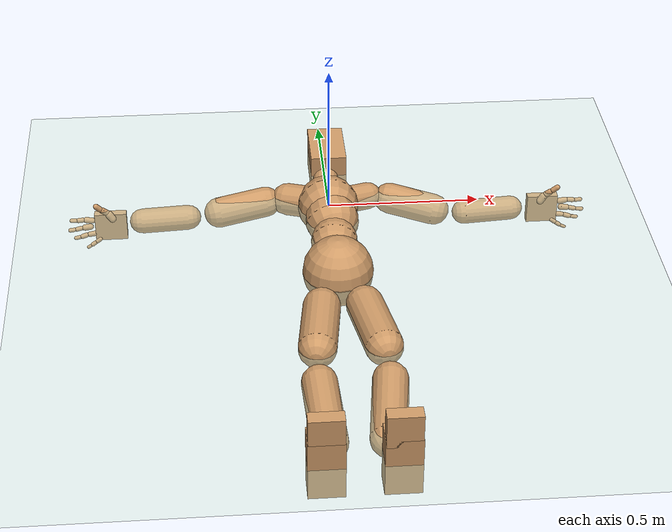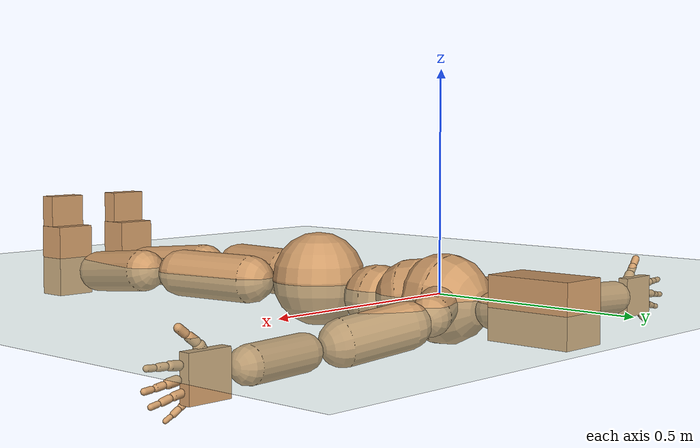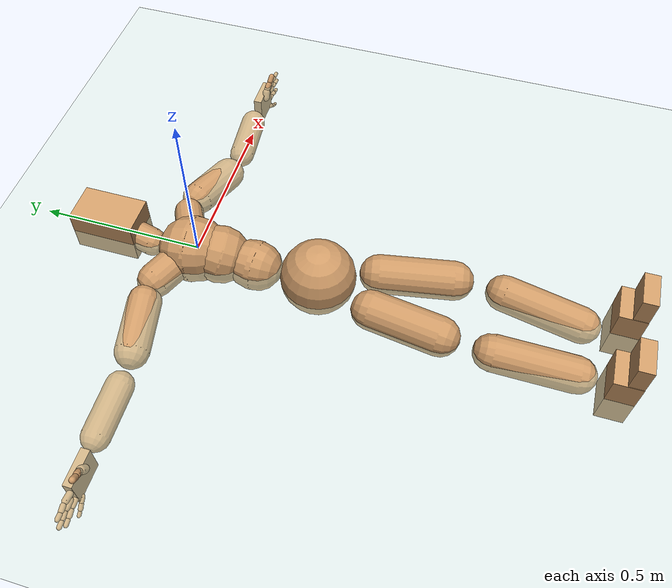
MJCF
<mujoco model="humanoid">
  <default>
    <joint damping="0.0" armature="0.01" stiffness="0.0" limited="true"/>
    <geom conaffinity="1" condim="3" contype="7" margin="0.001" rgba="0.8 0.6 .4 1" friction="1.0 0.1 0.1" />
  </default>
  <asset>
    <texture type="skybox" builtin="gradient" rgb1=".4 .5 .6" rgb2="0 0 0" width="100" height="100"/>
    <texture builtin="flat" height="1278" mark="cross" markrgb="1 1 1" name="texgeom" random="0.01" rgb1="0.8 0.6 0.4" rgb2="0.8 0.6 0.4" type="cube" width="127"/>
    <texture builtin="checker" height="100" name="texplane" rgb1="0 0 0" rgb2="0.8 0.8 0.8" type="2d" width="100"/>
    <material name="MatPlane" reflectance="0.5" shininess="1" specular="1" texrepeat="60 60" texture="texplane"/>
    <material name="geom" texture="texgeom" texuniform="true"/>
  </asset>
  <worldbody>
    <light cutoff="100" diffuse="1 1 1" dir="-0 0 -1.3" directional="true" exponent="1" pos="0 0 1.3" specular=".1 .1 .1"/>
    <geom conaffinity="1" condim="3" name="floor" pos="0 0 0" rgba="0.8 0.9 0.8 1" size="100 100 .2" type="plane" material="MatPlane"/>
    <body name="Pelvis" pos="0.0013 -0.38 0.0136">
      <freejoint name="Pelvis"/>
      <geom type="sphere" density="2637.470381" pos="-0.0013 0 -0.0115" size="0.1129"/>
      <body name="L_Hip" pos="0.0549 -0.0969 -0.0231">
        <joint name="L_Hip_x" type="hinge" pos="0 0 0" axis="1 0 0" stiffness="300" damping="30" armature="0.02" range="-110 30"/>
        <joint name="L_Hip_y" type="hinge" pos="0 0 0" axis="0 1 0" stiffness="300" damping="30" armature="0.02" range="-30 30"/>
        <joint name="L_Hip_z" type="hinge" pos="0 0 0" axis="0 0 1" stiffness="300" damping="30" armature="0.02" range="-30 30"/>
        <geom type="capsule" contype="1" conaffinity="1" density="1200" fromto="0.0127 -0.0722 0.0007 0.0506 -0.2888 0.0028" size="0.0591"/>
        <body name="L_Knee" pos="0.0633 -0.361 0.0035">
          <joint name="L_Knee_x" type="hinge" pos="0 0 0" axis="1 0 0" stiffness="300" damping="30" armature="0.02" range="-10 150"/>
          <joint name="L_Knee_y" type="hinge" pos="0 0 0" axis="0 1 0" stiffness="300" damping="30" armature="0.02" range="-45 60"/>
          <joint name="L_Knee_z" type="hinge" pos="0 0 0" axis="0 0 1" stiffness="300" damping="30" armature="0.02" range="-70 40"/>
          <geom type="capsule" contype="1" conaffinity="1" density="1000" fromto="-0.0099 -0.0777 -0.0077 -0.0395 -0.3108 -0.0309" size="0.0544"/>
          <body name="L_Ankle" pos="-0.0493 -0.3885 -0.0386">
            <joint name="L_Ankle_x" type="hinge" pos="0 0 0" axis="1 0 0" stiffness="200" damping="20" armature="0.02" range="-40 20"/>
            <joint name="L_Ankle_y" type="hinge" pos="0 0 0" axis="0 1 0" stiffness="200" damping="20" armature="0.02" range="-35 35"/>
            <joint name="L_Ankle_z" type="hinge" pos="0 0 0" axis="0 0 1" stiffness="200" damping="20" armature="0.02" range="-25 25"/>
            <geom type="box" density="1100" pos="0.0358 -0.0348 0.0341" size="0.053 0.04 0.0945" />

            <geom type="box" density="1100" pos="0.0358 -0.0532 0.1592" size="0.0511 0.0216 0.0525" />
            <body name="L_Toe_tip" pos="0.0358 -0.0532 0.2117"></body>
          </body>
        </body>
      </body>
      <body name="R_Hip" pos="-0.0564 -0.1082 -0.0163">
        <joint name="R_Hip_x" type="hinge" pos="0 0 0" axis="1 0 0" stiffness="300" damping="30" armature="0.02" range="-110 30"/>
        <joint name="R_Hip_y" type="hinge" pos="0 0 0" axis="0 1 0" stiffness="300" damping="30" armature="0.02" range="-30 30"/>
        <joint name="R_Hip_z" type="hinge" pos="0 0 0" axis="0 0 1" stiffness="300" damping="30" armature="0.02" range="-30 30"/>
        <geom type="capsule" contype="1" conaffinity="1" density="1200" fromto="-0.0094 -0.0689 -0.0009 -0.0375 -0.2756 -0.0035" size="0.059"/>
        <body name="R_Knee" pos="-0.0468 -0.3445 -0.0044">
          <joint name="R_Knee_x" type="hinge" pos="0 0 0" axis="1 0 0" stiffness="300" damping="30" armature="0.02" range="-10 150"/>
          <joint name="R_Knee_y" type="hinge" pos="0 0 0" axis="0 1 0" stiffness="300" damping="30" armature="0.02" range="-60 45"/>
          <joint name="R_Knee_z" type="hinge" pos="0 0 0" axis="0 0 1" stiffness="300" damping="30" armature="0.02" range="-40 70"/>
          <geom type="capsule" contype="1" conaffinity="1" density="1000" fromto="0.0039 -0.0801 -0.0074 0.0157 -0.3205 -0.0298" size="0.0541"/>
          <body name="R_Ankle" pos="0.0196 -0.4006 -0.0372">
            <joint name="R_Ankle_x" type="hinge" pos="0 0 0" axis="1 0 0" stiffness="200" damping="20" armature="0.02" range="-40 20"/>
            <joint name="R_Ankle_y" type="hinge" pos="0 0 0" axis="0 1 0" stiffness="200" damping="20" armature="0.02" range="-35 35"/>
            <joint name="R_Ankle_z" type="hinge" pos="0 0 0" axis="0 0 1" stiffness="200" damping="20" armature="0.02" range="-25 25"/>
            <geom type="box" density="1100" pos="-0.0237 -0.0285 0.0339" size="0.053 0.04 0.0945" />

            <geom type="box" density="1100" pos="-0.0236 -0.0469 0.1591" size="0.0511 0.0216 0.0525" />
            <body name="R_Toe_tip" pos="-0.0236 -0.0469 0.2116"></body>
          </body>
        </body>
      </body>
      <body name="Torso" pos="-0.0026 0.1184 -0.0391">
        <joint name="Torso_x" type="hinge" pos="0 0 0" axis="1 0 0" stiffness="600" damping="60" armature="0.02" range="0 90"/>
        <joint name="Torso_y" type="hinge" pos="0 0 0" axis="0 1 0" stiffness="600" damping="60" armature="0.02" range="-30 30"/>
        <joint name="Torso_z" type="hinge" pos="0 0 0" axis="0 0 1" stiffness="600" damping="60" armature="0.02" range="-35 35"/>
        <geom type="capsule" contype="1" conaffinity="1" density="1600" fromto="0.0053 0.0733 0.0010 0.0065 0.0896 0.0012" size="0.0759"/>
        <body name="Spine" pos="0.0118 0.1628 0.0022">
          <joint name="Spine_x" type="hinge" pos="0 0 0" axis="1 0 0" stiffness="600" damping="60" armature="0.02" range="-60 25"/>
          <joint name="Spine_y" type="hinge" pos="0 0 0" axis="0 1 0" stiffness="600" damping="60" armature="0.02" range="-30 30"/>
          <joint name="Spine_z" type="hinge" pos="0 0 0" axis="0 0 1" stiffness="600" damping="60" armature="0.02" range="-35 35"/>
          <geom type="capsule" contype="1" conaffinity="1" density="1600" fromto="-0.0043 0.0272 0.0088 -0.0053 0.0332 0.0107" size="0.0883"/>
          <body name="Chest" pos="-0.0096 0.0604 0.0195">
            <joint name="Chest_x" type="hinge" pos="0 0 0" axis="1 0 0" stiffness="600" damping="60" armature="0.02" range="-5 15"/>
            <joint name="Chest_y" type="hinge" pos="0 0 0" axis="0 1 0" stiffness="600" damping="60" armature="0.02" range="-20 20"/>
            <joint name="Chest_z" type="hinge" pos="0 0 0" axis="0 0 1" stiffness="600" damping="60" armature="0.02" range="-20 15"/>
            <geom type="capsule" contype="1" conaffinity="1" density="1600" fromto="-0.0018 0.0470 -0.0052 -0.0022 0.0574 -0.0064" size="0.1014"/>
            <body name="Neck" pos="-0.0086 0.162 -0.023">
              <joint name="Neck_x" type="hinge" pos="0 0 0" axis="1 0 0" stiffness="100" damping="10" armature="0.02" range="-60 20"/>
              <joint name="Neck_y" type="hinge" pos="0 0 0" axis="0 1 0" stiffness="100" damping="10" armature="0.02" range="-45 45"/>
              <joint name="Neck_z" type="hinge" pos="0 0 0" axis="0 0 1" stiffness="100" damping="10" armature="0.02" range="-45 45"/>
              <geom type="capsule" contype="1" conaffinity="1" density="1000" fromto="0.0045 0.0277 0.0041 0.013886651353541325 0.08505520054994735 0.012658417410581796" size="0.0429"/>
              <body name="Head" pos="0.0226 0.1385 0.0206">
                <joint name="Head_x" type="hinge" pos="0 0 0" axis="1 0 0" stiffness="50" damping="5" armature="0.02" range="-30 10"/>
                <joint name="Head_y" type="hinge" pos="0 0 0" axis="0 1 0" stiffness="50" damping="5" armature="0.02" range="-30 30"/>
                <joint name="Head_z" type="hinge" pos="0 0 0" axis="0 0 1" stiffness="50" damping="5" armature="0.02" range="-10 25"/>
                <geom type="box" density="1032.580508" pos="0 0.03 0.0032" size="0.06 0.1 0.07" />
              </body>
            </body>
            <body name="L_Thorax" pos="0.0379 0.0752 -0.004">
              <joint name="L_Thorax_x" type="hinge" pos="0 0 0" axis="1 0 0" stiffness="200" damping="20" armature="0.02" range="-25 10"/>
              <joint name="L_Thorax_y" type="hinge" pos="0 0 0" axis="0 1 0" stiffness="200" damping="20" armature="0.02" range="-55 20"/>
              <joint name="L_Thorax_z" type="hinge" pos="0 0 0" axis="0 0 1" stiffness="200" damping="20" armature="0.02" range="-40 25"/>
              <geom type="capsule" contype="1" conaffinity="1" density="1000" fromto="0.0250 0.0131 -0.0042 0.1001 0.0524 -0.0168" size="0.0455"/>
              <body name="L_Shoulder" pos="0.1251 0.0655 -0.021">
                <joint name="L_Shoulder_x" type="hinge" pos="0 0 0" axis="1 0 0" stiffness="200" damping="20" armature="0.02" range="-90 30"/>
                <joint name="L_Shoulder_y" type="hinge" pos="0 0 0" axis="0 1 0" stiffness="200" damping="20" armature="0.02" range="-100 20"/>
                <joint name="L_Shoulder_z" type="hinge" pos="0 0 0" axis="0 0 1" stiffness="200" damping="20" armature="0.02" range="-100 60"/>
                <geom type="capsule" contype="1" conaffinity="1" density="1000" fromto="0.0489 -0.0152 -0.0078 0.1957 -0.0610 -0.0310" size="0.0516"/>
                <body name="L_Elbow" pos="0.2447 -0.0762 -0.0388">
                  <joint name="L_Elbow_x" type="hinge" pos="0 0 0" axis="1 0 0" stiffness="150" damping="15" armature="0.02" range="-65 90"/>
                  <joint name="L_Elbow_y" type="hinge" pos="0 0 0" axis="0 1 0" stiffness="150" damping="15" armature="0.02" range="-140 10"/>
                  <joint name="L_Elbow_z" type="hinge" pos="0 0 0" axis="0 0 1" stiffness="150" damping="15" armature="0.02" range="-25 65"/>
                  <geom type="capsule" contype="1" conaffinity="1" density="1000" fromto="0.0537 0.0049 -0.0003 0.2149 0.0198 -0.0013" size="0.0403"/>
                  <body name="L_Wrist" pos="0.2686 0.0247 -0.0016">
                    <joint name="L_Wrist_x" type="hinge" pos="0 0 0" axis="1 0 0" stiffness="50" damping="5" armature="0.02" range="-180 180"/>
                    <joint name="L_Wrist_y" type="hinge" pos="0 0 0" axis="0 1 0" stiffness="50" damping="5" armature="0.02" range="-145 100"/>
                    <joint name="L_Wrist_z" type="hinge" pos="0 0 0" axis="0 0 1" stiffness="50" damping="5" armature="0.02" range="-180 180"/>
                    <geom type="box" density="1204.254092" pos="0.0548 -0.0030 -0.0035" size="0.0516 0.0132 0.0494" />
                    <body name="L_Index1" pos="0.1073 -0.0096 0.0213">
                      <joint name="L_Index1_x" type="hinge" pos="0 0 0" axis="1 0 0" stiffness="10" damping="0.2" armature="0.02" range="-10 15"/>
                      <joint name="L_Index1_y" type="hinge" pos="0 0 0" axis="0 1 0" stiffness="10" damping="0.2" armature="0.02" range="-5 25"/>
                      <joint name="L_Index1_z" type="hinge" pos="0 0 0" axis="0 0 1" stiffness="10" damping="0.2" armature="0.02" range="-60 20"/>
                      <geom type="capsule" contype="1" conaffinity="1" density="1000" fromto="0.0068 0.0003 0.0008 0.0271 0.0013 0.0030" size="0.0097"/>
                      <body name="L_Index2" pos="0.0339 0.0016 0.0038">
                        <joint name="L_Index2_x" type="hinge" pos="0 0 0" axis="1 0 0" stiffness="10" damping="0.2" armature="0.02" range="-10 20"/>
                        <joint name="L_Index2_y" type="hinge" pos="0 0 0" axis="0 1 0" stiffness="10" damping="0.2" armature="0.02" range="-15 10"/>
                        <joint name="L_Index2_z" type="hinge" pos="0 0 0" axis="0 0 1" stiffness="10" damping="0.2" armature="0.02" range="-80 20"/>
                        <geom type="capsule" contype="1" conaffinity="1" density="1000" fromto="0.0048 -0.0006 -0.0001 0.0190 -0.0023 -0.0003" size="0.0079"/>
                        <body name="L_Index3" pos="0.0238 -0.0028 -0.0004">
                          <joint name="L_Index3_x" type="hinge" pos="0 0 0" axis="1 0 0" stiffness="10" damping="0.2" armature="0.02" range="-10 10"/>
                          <joint name="L_Index3_y" type="hinge" pos="0 0 0" axis="0 1 0" stiffness="10" damping="0.2" armature="0.02" range="-10 5"/>
                          <joint name="L_Index3_z" type="hinge" pos="0 0 0" axis="0 0 1" stiffness="10" damping="0.2" armature="0.02" range="-35 15"/>
                          <geom type="capsule" contype="1" conaffinity="1" density="1000" fromto="0.0052 -0.0002 0.0003 0.0206 -0.0007 0.0013" size="0.0067"/>
                          <body name="L_Index4" pos="0.02728241263674339 -0.0009169614492449152 0.0017339228984898304"></body>
                        </body>
                      </body>
                    </body>
                    <body name="L_Middle1" pos="0.1154 -0.0066 -0.0034">
                      <joint name="L_Middle1_x" type="hinge" pos="0 0 0" axis="1 0 0" stiffness="10" damping="0.2" armature="0.02" range="-30 15"/>
                      <joint name="L_Middle1_y" type="hinge" pos="0 0 0" axis="0 1 0" stiffness="10" damping="0.2" armature="0.02" range="-10 15"/>
                      <joint name="L_Middle1_z" type="hinge" pos="0 0 0" axis="0 0 1" stiffness="10" damping="0.2" armature="0.02" range="-80 20"/>
                      <geom type="capsule" contype="1" conaffinity="1" density="1000" fromto="0.0065 0.0001 -0.0008 0.0258 0.0004 -0.0034" size="0.01"/>
                      <body name="L_Middle2" pos="0.0323 0.0005 -0.0042">
                        <joint name="L_Middle2_x" type="hinge" pos="0 0 0" axis="1 0 0" stiffness="10" damping="0.2" armature="0.02" range="-10 0"/>
                        <joint name="L_Middle2_y" type="hinge" pos="0 0 0" axis="0 1 0" stiffness="10" damping="0.2" armature="0.02" range="-5 10"/>
                        <joint name="L_Middle2_z" type="hinge" pos="0 0 0" axis="0 0 1" stiffness="10" damping="0.2" armature="0.02" range="-90 20"/>
                        <geom type="capsule" contype="1" conaffinity="1" density="1000" fromto="0.0049 -0.0005 -0.0009 0.0197 -0.0020 -0.0036" size="0.0074"/>
                        <body name="L_Middle3" pos="0.0246 -0.0025 -0.0045">
                          <joint name="L_Middle3_x" type="hinge" pos="0 0 0" axis="1 0 0" stiffness="10" damping="0.2" armature="0.02" range="-10 5"/>
                          <joint name="L_Middle3_y" type="hinge" pos="0 0 0" axis="0 1 0" stiffness="10" damping="0.2" armature="0.02" range="-10 0"/>
                          <joint name="L_Middle3_z" type="hinge" pos="0 0 0" axis="0 0 1" stiffness="10" damping="0.2" armature="0.02" range="-35 15"/>
                          <geom type="capsule" contype="1" conaffinity="1" density="1000" fromto="0.0053 -0.0001 -0.0005 0.0213 -0.0004 -0.0020" size="0.0066"/>
                          <body name="L_Middle4" pos="0.02787004116363421 -0.0005231882718181415 -0.002615941359090707"></body>
                        </body>
                      </body>
                    </body>
                    <body name="L_Pinky1" pos="0.0884 -0.0152 -0.0469">
                      <joint name="L_Pinky1_x" type="hinge" pos="0 0 0" axis="1 0 0" stiffness="10" damping="0.2" armature="0.02" range="-45 30"/>
                      <joint name="L_Pinky1_y" type="hinge" pos="0 0 0" axis="0 1 0" stiffness="10" damping="0.2" armature="0.02" range="-30 5"/>
                      <joint name="L_Pinky1_z" type="hinge" pos="0 0 0" axis="0 0 1" stiffness="10" damping="0.2" armature="0.02" range="-55 25"/>
                      <geom type="capsule" contype="1" conaffinity="1" density="1000" fromto="0.0034 -0.0004 -0.0024 0.0137 -0.0015 -0.0097" size="0.0072"/>
                      <body name="L_Pinky2" pos="0.0171 -0.0019 -0.0121">
                        <joint name="L_Pinky2_x" type="hinge" pos="0 0 0" axis="1 0 0" stiffness="10" damping="0.2" armature="0.02" range="-45 35"/>
                        <joint name="L_Pinky2_y" type="hinge" pos="0 0 0" axis="0 1 0" stiffness="10" damping="0.2" armature="0.02" range="-10 15"/>
                        <joint name="L_Pinky2_z" type="hinge" pos="0 0 0" axis="0 0 1" stiffness="10" damping="0.2" armature="0.02" range="-50 15"/>
                        <geom type="capsule" contype="1" conaffinity="1" density="1000" fromto="0.0034 -0.0004 -0.0023 0.0134 -0.0017 -0.0091" size="0.0068"/>
                        <body name="L_Pinky3" pos="0.0168 -0.0022 -0.0113">
                          <joint name="L_Pinky3_x" type="hinge" pos="0 0 0" axis="1 0 0" stiffness="10" damping="0.2" armature="0.02" range="-30 10"/>
                          <joint name="L_Pinky3_y" type="hinge" pos="0 0 0" axis="0 1 0" stiffness="10" damping="0.2" armature="0.02" range="-15 10"/>
                          <joint name="L_Pinky3_z" type="hinge" pos="0 0 0" axis="0 0 1" stiffness="10" damping="0.2" armature="0.02" range="-20 25"/>
                          <geom type="capsule" contype="1" conaffinity="1" density="1000" fromto="0.0038 -0.0000 -0.0019 0.0150 -0.0001 -0.0075" size="0.0052"/>
                          <body name="L_Pinky4" pos="0.019650873089661965 -0.00014152565258626756 -0.009825436544830982"></body>
                        </body>
                      </body>
                    </body>
                    <body name="L_Ring1" pos="0.1026 -0.0094 -0.0289">
                      <joint name="L_Ring1_x" type="hinge" pos="0 0 0" axis="1 0 0" stiffness="10" damping="0.2" armature="0.02" range="-25 15"/>
                      <joint name="L_Ring1_y" type="hinge" pos="0 0 0" axis="0 1 0" stiffness="10" damping="0.2" armature="0.02" range="-20 5"/>
                      <joint name="L_Ring1_z" type="hinge" pos="0 0 0" axis="0 0 1" stiffness="10" damping="0.2" armature="0.02" range="-75 25"/>
                      <geom type="capsule" contype="1" conaffinity="1" density="1000" fromto="0.0060 0.0002 -0.0010 0.0239 0.0006 -0.0040" size="0.0085"/>
                      <body name="L_Ring2" pos="0.0298 0.0008 -0.005">
                        <joint name="L_Ring2_x" type="hinge" pos="0 0 0" axis="1 0 0" stiffness="10" damping="0.2" armature="0.02" range="-25 0"/>
                        <joint name="L_Ring2_y" type="hinge" pos="0 0 0" axis="0 1 0" stiffness="10" damping="0.2" armature="0.02" range="-10 10"/>
                        <joint name="L_Ring2_z" type="hinge" pos="0 0 0" axis="0 0 1" stiffness="10" damping="0.2" armature="0.02" range="-80 20"/>
                        <geom type="capsule" contype="1" conaffinity="1" density="1000" fromto="0.0048 -0.0004 -0.0014 0.0192 -0.0018 -0.0055" size="0.0079"/>
                        <body name="L_Ring3" pos="0.024 -0.0022 -0.0068">
                          <joint name="L_Ring3_x" type="hinge" pos="0 0 0" axis="1 0 0" stiffness="10" damping="0.2" armature="0.02" range="-20 0"/>
                          <joint name="L_Ring3_y" type="hinge" pos="0 0 0" axis="0 1 0" stiffness="10" damping="0.2" armature="0.02" range="-20 0"/>
                          <joint name="L_Ring3_z" type="hinge" pos="0 0 0" axis="0 0 1" stiffness="10" damping="0.2" armature="0.02" range="-35 20"/>
                          <geom type="capsule" contype="1" conaffinity="1" density="1000" fromto="0.0052 -0.0000 -0.0010 0.0208 -0.0002 -0.0039" size="0.0061"/>
                          <body name="L_Ring4" pos="0.026796777658199374 -0.00027688176484870995 -0.005014785590306294"></body>
                        </body>
                      </body>
                    </body>
                    <body name="L_Thumb1" pos="0.0425 -0.0203 0.0275">
                      <joint name="L_Thumb1_x" type="hinge" pos="0 0 0" axis="1 0 0" stiffness="10" damping="0.2" armature="0.02" range="-10 125"/>
                      <joint name="L_Thumb1_y" type="hinge" pos="0 0 0" axis="0 1 0" stiffness="10" damping="0.2" armature="0.02" range="-20 30"/>
                      <joint name="L_Thumb1_z" type="hinge" pos="0 0 0" axis="0 0 1" stiffness="10" damping="0.2" armature="0.02" range="-20 30"/>
                      <geom type="capsule" contype="1" conaffinity="1" density="1000" fromto="0.0035 0.0004 0.0054 0.0141 0.0014 0.0217" size="0.0127"/>
                      <body name="L_Thumb2" pos="0.0176 0.0018 0.0271">
                        <joint name="L_Thumb2_x" type="hinge" pos="0 0 0" axis="1 0 0" stiffness="10" damping="0.2" armature="0.02" range="-50 0"/>
                        <joint name="L_Thumb2_y" type="hinge" pos="0 0 0" axis="0 1 0" stiffness="10" damping="0.2" armature="0.02" range="-20 20"/>
                        <joint name="L_Thumb2_z" type="hinge" pos="0 0 0" axis="0 0 1" stiffness="10" damping="0.2" armature="0.02" range="-25 15"/>
                        <geom type="capsule" contype="1" conaffinity="1" density="1000" fromto="0.0042 -0.0010 0.0034 0.0170 -0.0040 0.0137" size="0.0101"/>
                        <body name="L_Thumb3" pos="0.0212 -0.005 0.0171">
                          <joint name="L_Thumb3_x" type="hinge" pos="0 0 0" axis="1 0 0" stiffness="10" damping="0.2" armature="0.02" range="-10 60"/>
                          <joint name="L_Thumb3_y" type="hinge" pos="0 0 0" axis="0 1 0" stiffness="10" damping="0.2" armature="0.02" range="-20 20"/>
                          <joint name="L_Thumb3_z" type="hinge" pos="0 0 0" axis="0 0 1" stiffness="10" damping="0.2" armature="0.02" range="-25 20"/>
                          <geom type="capsule" contype="1" conaffinity="1" density="1000" fromto="0.0046 -0.0006 0.0038 0.0186 -0.0024 0.0153" size="0.0091"/>
                          <body name="L_Thumb4" pos="0.02559735990516441 -0.003299660559235424 0.021047831350670766"></body>
                        </body>
                      </body>
                    </body>
                  </body>
                </body>
              </body>
            </body>
            <body name="R_Thorax" pos="-0.0411 0.0761 -0.0077">
              <joint name="R_Thorax_x" type="hinge" pos="0 0 0" axis="1 0 0" stiffness="200" damping="20" armature="0.02" range="-25 10"/>
              <joint name="R_Thorax_y" type="hinge" pos="0 0 0" axis="0 1 0" stiffness="200" damping="20" armature="0.02" range="-20 55"/>
              <joint name="R_Thorax_z" type="hinge" pos="0 0 0" axis="0 0 1" stiffness="200" damping="20" armature="0.02" range="-25 40"/>
              <geom type="capsule" contype="1" conaffinity="1" density="1000" fromto="-0.0232 0.0124 -0.0031 -0.0930 0.0495 -0.0124" size="0.054"/>
              <body name="R_Shoulder" pos="-0.1162 0.0619 -0.0155">
                <joint name="R_Shoulder_x" type="hinge" pos="0 0 0" axis="1 0 0" stiffness="200" damping="20" armature="0.02" range="-90 30"/>
                <joint name="R_Shoulder_y" type="hinge" pos="0 0 0" axis="0 1 0" stiffness="200" damping="20" armature="0.02" range="-20 100"/>
                <joint name="R_Shoulder_z" type="hinge" pos="0 0 0" axis="0 0 1" stiffness="200" damping="20" armature="0.02" range="-60 100"/>
                <geom type="capsule" contype="1" conaffinity="1" density="1000" fromto="-0.0522 -0.0091 -0.0058 -0.2088 -0.0365 -0.0232" size="0.0509"/>
                <body name="R_Elbow" pos="-0.261 -0.0456 -0.029">
                  <joint name="R_Elbow_x" type="hinge" pos="0 0 0" axis="1 0 0" stiffness="150" damping="15" armature="0.02" range="-65 90"/>
                  <joint name="R_Elbow_y" type="hinge" pos="0 0 0" axis="0 1 0" stiffness="150" damping="15" armature="0.02" range="-10 140"/>
                  <joint name="R_Elbow_z" type="hinge" pos="0 0 0" axis="0 0 1" stiffness="150" damping="15" armature="0.02" range="-65 25"/>
                  <geom type="capsule" contype="1" conaffinity="1" density="1000" fromto="-0.0520 0.0001 -0.0024 -0.2082 0.0002 -0.0096" size="0.0413"/>
                  <body name="R_Wrist" pos="-0.2602 0.0003 -0.012">
                    <joint name="R_Wrist_x" type="hinge" pos="0 0 0" axis="1 0 0" stiffness="50" damping="5" armature="0.02" range="-180 180"/>
                    <joint name="R_Wrist_y" type="hinge" pos="0 0 0" axis="0 1 0" stiffness="50" damping="5" armature="0.02" range="-100 145"/>
                    <joint name="R_Wrist_z" type="hinge" pos="0 0 0" axis="0 0 1" stiffness="50" damping="5" armature="0.02" range="-180 180"/>
                    <geom type="box" density="1222.480729" pos="-0.0526 -0.0065 -0.0047" size="0.0531 0.0132 0.0494" />
                    <body name="R_Index1" pos="-0.1068 -0.0131 0.02">
                      <joint name="R_Index1_x" type="hinge" pos="0 0 0" axis="1 0 0" stiffness="10" damping="0.2" armature="0.02" range="-10 15"/>
                      <joint name="R_Index1_y" type="hinge" pos="0 0 0" axis="0 1 0" stiffness="10" damping="0.2" armature="0.02" range="-25 5"/>
                      <joint name="R_Index1_z" type="hinge" pos="0 0 0" axis="0 0 1" stiffness="10" damping="0.2" armature="0.02" range="-20 60"/>
                      <geom type="capsule" contype="1" conaffinity="1" density="1000" fromto="-0.0068 0.0003 0.0008 -0.0271 0.0013 0.0030" size="0.0097"/>
                      <body name="R_Index2" pos="-0.0339 0.0016 0.0038">
                        <joint name="R_Index2_x" type="hinge" pos="0 0 0" axis="1 0 0" stiffness="10" damping="0.2" armature="0.02" range="-10 20"/>
                        <joint name="R_Index2_y" type="hinge" pos="0 0 0" axis="0 1 0" stiffness="10" damping="0.2" armature="0.02" range="-10 15"/>
                        <joint name="R_Index2_z" type="hinge" pos="0 0 0" axis="0 0 1" stiffness="10" damping="0.2" armature="0.02" range="-20 80"/>
                        <geom type="capsule" contype="1" conaffinity="1" density="1000" fromto="-0.0048 -0.0006 -0.0001 -0.0190 -0.0023 -0.0003" size="0.0079"/>
                        <body name="R_Index3" pos="-0.0238 -0.0028 -0.0004">
                          <joint name="R_Index3_x" type="hinge" pos="0 0 0" axis="1 0 0" stiffness="10" damping="0.2" armature="0.02" range="-10 10"/>
                          <joint name="R_Index3_y" type="hinge" pos="0 0 0" axis="0 1 0" stiffness="10" damping="0.2" armature="0.02" range="-5 10"/>
                          <joint name="R_Index3_z" type="hinge" pos="0 0 0" axis="0 0 1" stiffness="10" damping="0.2" armature="0.02" range="-15 35"/>
                          <geom type="capsule" contype="1" conaffinity="1" density="1000" fromto="-0.0044 -0.0002 0.0003 -0.0174 -0.0007 0.0013" size="0.007"/>
                          <body name="R_Index4" pos="-0.02437425515367806 -0.0009682405828337717 0.001836481165667543"></body>
                        </body>
                      </body>
                    </body>
                    <body name="R_Middle1" pos="-0.115 -0.0101 -0.0047">
                      <joint name="R_Middle1_x" type="hinge" pos="0 0 0" axis="1 0 0" stiffness="10" damping="0.2" armature="0.02" range="-30 15"/>
                      <joint name="R_Middle1_y" type="hinge" pos="0 0 0" axis="0 1 0" stiffness="10" damping="0.2" armature="0.02" range="-15 10"/>
                      <joint name="R_Middle1_z" type="hinge" pos="0 0 0" axis="0 0 1" stiffness="10" damping="0.2" armature="0.02" range="-20 80"/>
                      <geom type="capsule" contype="1" conaffinity="1" density="1000" fromto="-0.0065 0.0001 -0.0008 -0.0258 0.0004 -0.0034" size="0.01"/>
                      <body name="R_Middle2" pos="-0.0323 0.0005 -0.0042">
                        <joint name="R_Middle2_x" type="hinge" pos="0 0 0" axis="1 0 0" stiffness="10" damping="0.2" armature="0.02" range="-10 0"/>
                        <joint name="R_Middle2_y" type="hinge" pos="0 0 0" axis="0 1 0" stiffness="10" damping="0.2" armature="0.02" range="-10 5"/>
                        <joint name="R_Middle2_z" type="hinge" pos="0 0 0" axis="0 0 1" stiffness="10" damping="0.2" armature="0.02" range="-20 90"/>
                        <geom type="capsule" contype="1" conaffinity="1" density="1000" fromto="-0.0049 -0.0005 -0.0009 -0.0197 -0.0020 -0.0036" size="0.0074"/>
                        <body name="R_Middle3" pos="-0.0246 -0.0025 -0.0045">
                          <joint name="R_Middle3_x" type="hinge" pos="0 0 0" axis="1 0 0" stiffness="10" damping="0.2" armature="0.02" range="-10 5"/>
                          <joint name="R_Middle3_y" type="hinge" pos="0 0 0" axis="0 1 0" stiffness="10" damping="0.2" armature="0.02" range="0 10"/>
                          <joint name="R_Middle3_z" type="hinge" pos="0 0 0" axis="0 0 1" stiffness="10" damping="0.2" armature="0.02" range="-15 35"/>
                          <geom type="capsule" contype="1" conaffinity="1" density="1000" fromto="-0.0045 -0.0001 -0.0005 -0.0181 -0.0004 -0.0020" size="0.0068"/>
                          <body name="R_Middle4" pos="-0.024857389184872777 -0.0005490600555486642 -0.002745300277743321"></body>
                        </body>
                      </body>
                    </body>
                    <body name="R_Pinky1" pos="-0.088 -0.0187 -0.0481">
                      <joint name="R_Pinky1_x" type="hinge" pos="0 0 0" axis="1 0 0" stiffness="10" damping="0.2" armature="0.02" range="-45 30"/>
                      <joint name="R_Pinky1_y" type="hinge" pos="0 0 0" axis="0 1 0" stiffness="10" damping="0.2" armature="0.02" range="-5 30"/>
                      <joint name="R_Pinky1_z" type="hinge" pos="0 0 0" axis="0 0 1" stiffness="10" damping="0.2" armature="0.02" range="-25 55"/>
                      <geom type="capsule" contype="1" conaffinity="1" density="1000" fromto="-0.0034 -0.0004 -0.0024 -0.0137 -0.0015 -0.0097" size="0.0072"/>
                      <body name="R_Pinky2" pos="-0.0171 -0.0019 -0.0121">
                        <joint name="R_Pinky2_x" type="hinge" pos="0 0 0" axis="1 0 0" stiffness="10" damping="0.2" armature="0.02" range="-45 35"/>
                        <joint name="R_Pinky2_y" type="hinge" pos="0 0 0" axis="0 1 0" stiffness="10" damping="0.2" armature="0.02" range="-15 10"/>
                        <joint name="R_Pinky2_z" type="hinge" pos="0 0 0" axis="0 0 1" stiffness="10" damping="0.2" armature="0.02" range="-15 50"/>
                        <geom type="capsule" contype="1" conaffinity="1" density="1000" fromto="-0.0034 -0.0004 -0.0023 -0.0134 -0.0017 -0.0091" size="0.0068"/>
                        <body name="R_Pinky3" pos="-0.0168 -0.0022 -0.0113">
                          <joint name="R_Pinky3_x" type="hinge" pos="0 0 0" axis="1 0 0" stiffness="10" damping="0.2" armature="0.02" range="-30 10"/>
                          <joint name="R_Pinky3_y" type="hinge" pos="0 0 0" axis="0 1 0" stiffness="10" damping="0.2" armature="0.02" range="-10 15"/>
                          <joint name="R_Pinky3_z" type="hinge" pos="0 0 0" axis="0 0 1" stiffness="10" damping="0.2" armature="0.02" range="-25 20"/>
                          <geom type="capsule" contype="1" conaffinity="1" density="1000" fromto="-0.0030 -0.0000 -0.0019 -0.0118 -0.0001 -0.0075" size="0.0054"/>
                          <body name="R_Pinky4" pos="-0.016355562683660962 -0.00015176775776887458 -0.010398994435056977"></body>
                        </body>
                      </body>
                    </body>
                    <body name="R_Ring1" pos="-0.1021 -0.0129 -0.0301">
                      <joint name="R_Ring1_x" type="hinge" pos="0 0 0" axis="1 0 0" stiffness="10" damping="0.2" armature="0.02" range="-25 15"/>
                      <joint name="R_Ring1_y" type="hinge" pos="0 0 0" axis="0 1 0" stiffness="10" damping="0.2" armature="0.02" range="-5 20"/>
                      <joint name="R_Ring1_z" type="hinge" pos="0 0 0" axis="0 0 1" stiffness="10" damping="0.2" armature="0.02" range="-25 75"/>
                      <geom type="capsule" contype="1" conaffinity="1" density="1000" fromto="-0.0060 0.0002 -0.0010 -0.0239 0.0006 -0.0040" size="0.0085"/>
                      <body name="R_Ring2" pos="-0.0298 0.0008 -0.005">
                        <joint name="R_Ring2_x" type="hinge" pos="0 0 0" axis="1 0 0" stiffness="10" damping="0.2" armature="0.02" range="-25 0"/>
                        <joint name="R_Ring2_y" type="hinge" pos="0 0 0" axis="0 1 0" stiffness="10" damping="0.2" armature="0.02" range="-10 10"/>
                        <joint name="R_Ring2_z" type="hinge" pos="0 0 0" axis="0 0 1" stiffness="10" damping="0.2" armature="0.02" range="-20 80"/>
                        <geom type="capsule" contype="1" conaffinity="1" density="1000" fromto="-0.0048 -0.0004 -0.0014 -0.0192 -0.0018 -0.0055" size="0.0079"/>
                        <body name="R_Ring3" pos="-0.024 -0.0022 -0.0068">
                          <joint name="R_Ring3_x" type="hinge" pos="0 0 0" axis="1 0 0" stiffness="10" damping="0.2" armature="0.02" range="-20 0"/>
                          <joint name="R_Ring3_y" type="hinge" pos="0 0 0" axis="0 1 0" stiffness="10" damping="0.2" armature="0.02" range="0 20"/>
                          <joint name="R_Ring3_z" type="hinge" pos="0 0 0" axis="0 0 1" stiffness="10" damping="0.2" armature="0.02" range="-20 35"/>
                          <geom type="capsule" contype="1" conaffinity="1" density="1000" fromto="-0.0044 -0.0000 -0.0010 -0.0176 -0.0002 -0.0039" size="0.0064"/>
                          <body name="R_Ring4" pos="-0.023850237457857047 -0.0002947005675432886 -0.005273158229377684"></body>
                        </body>
                      </body>
                    </body>
                    <body name="R_Thumb1" pos="-0.0421 -0.0238 0.0262">
                      <joint name="R_Thumb1_x" type="hinge" pos="0 0 0" axis="1 0 0" stiffness="10" damping="0.2" armature="0.02" range="-10 125"/>
                      <joint name="R_Thumb1_y" type="hinge" pos="0 0 0" axis="0 1 0" stiffness="10" damping="0.2" armature="0.02" range="-30 20"/>
                      <joint name="R_Thumb1_z" type="hinge" pos="0 0 0" axis="0 0 1" stiffness="10" damping="0.2" armature="0.02" range="-30 20"/>
                      <geom type="capsule" contype="1" conaffinity="1" density="1000" fromto="-0.0035 0.0004 0.0054 -0.0141 0.0014 0.0217" size="0.0127"/>
                      <body name="R_Thumb2" pos="-0.0176 0.0018 0.0271">
                        <joint name="R_Thumb2_x" type="hinge" pos="0 0 0" axis="1 0 0" stiffness="10" damping="0.2" armature="0.02" range="-50 0"/>
                        <joint name="R_Thumb2_y" type="hinge" pos="0 0 0" axis="0 1 0" stiffness="10" damping="0.2" armature="0.02" range="-20 20"/>
                        <joint name="R_Thumb2_z" type="hinge" pos="0 0 0" axis="0 0 1" stiffness="10" damping="0.2" armature="0.02" range="-15 25"/>
                        <geom type="capsule" contype="1" conaffinity="1" density="1000" fromto="-0.0042 -0.0010 0.0034 -0.0170 -0.0040 0.0137" size="0.0101"/>
                        <body name="R_Thumb3" pos="-0.0212 -0.005 0.0171">
                          <joint name="R_Thumb3_x" type="hinge" pos="0 0 0" axis="1 0 0" stiffness="10" damping="0.2" armature="0.02" range="-10 60"/>
                          <joint name="R_Thumb3_y" type="hinge" pos="0 0 0" axis="0 1 0" stiffness="10" damping="0.2" armature="0.02" range="-20 20"/>
                          <joint name="R_Thumb3_z" type="hinge" pos="0 0 0" axis="0 0 1" stiffness="10" damping="0.2" armature="0.02" range="-20 25"/>
                          <geom type="capsule" contype="1" conaffinity="1" density="1000" fromto="-0.0038 -0.0006 0.0038 -0.0154 -0.0024 0.0153" size="0.0094"/>
                          <body name="R_Thumb4" pos="-0.022035348718785264 -0.0034296230770528855 0.021878147436726766"></body>
                        </body>
                      </body>
                    </body>
                  </body>
                </body>
              </body>
            </body>
          </body>
        </body>
      </body>
    </body>
  </worldbody>
</mujoco>
